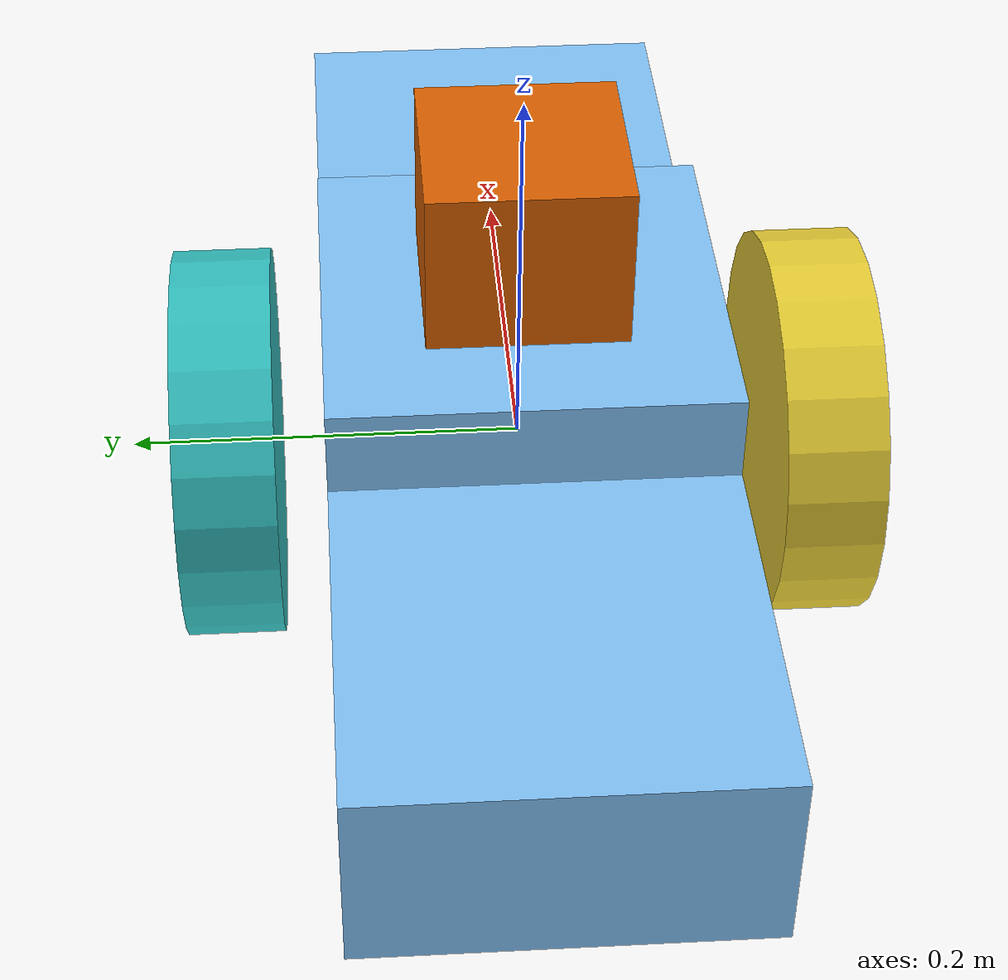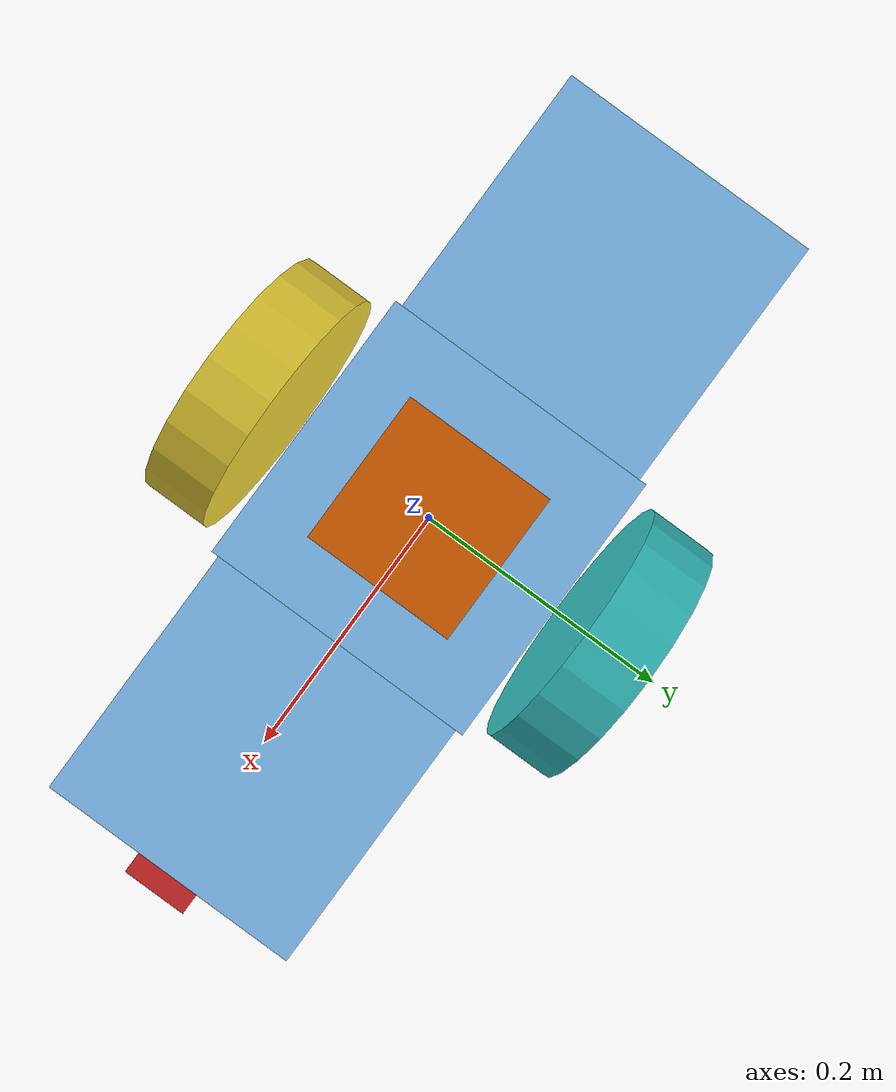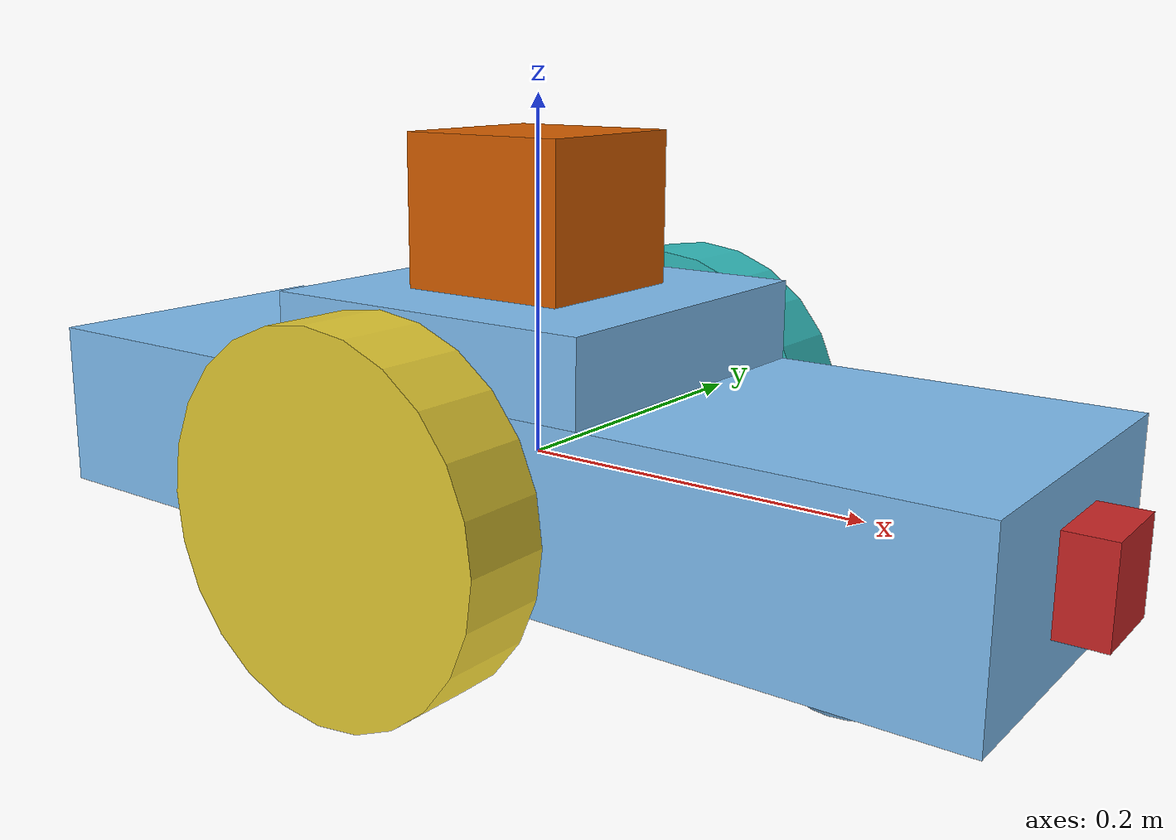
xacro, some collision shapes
<?xml version='1.0'?>

<robot name="my_robot" xmlns:xacro="http://www.ros.org/wiki/xacro">

  <xacro:include filename="$(find my_robot)/urdf/my_robot.gazebo" />

  <link name="robot_footprint"></link>

  <joint name="robot_footprint_joint" type="fixed">
    <origin xyz="0 0 0" rpy="0 0 0" />
    <parent link="robot_footprint"/>
    <child link="chassis" />
  </joint>

  <link name='chassis'>
    <pose>0 0 0.1 0 0 0</pose>

    <inertial>
      <mass value="15.0"/>
      <origin xyz="0.0 0 0" rpy=" 0 0 0"/>
      <inertia
          ixx="0.1" ixy="0" ixz="0"
          iyy="0.1" iyz="0"
          izz="0.1"
      />
    </inertial>

    <collision name='collision'>
      <origin xyz="0 0 0" rpy=" 0 0 0"/>
      <geometry>
        <box size=".6 .2 .1"/>
      </geometry>
    </collision>

    <visual name='chassis_visual'>
      <origin xyz="0 0 0" rpy=" 0 0 0"/>
      <geometry>
        <box size=".6 .2 .1"/>
      </geometry>
    </visual>

   <collision name="upper_box">
     <origin xyz="0 0 0.075" rpy="0 0 0"/>
     <geometry>
       <box size="0.2 0.2 0.05"/>
     </geometry>
   </collision>

   <visual name="upper_box_visual">
     <origin xyz="0 0 0.07" rpy="0 0 0"/>
     <geometry>
       <box size="0.2 0.2 0.05"/>
     </geometry>
   </visual>

    <collision name='back_caster_collision'>
      <origin xyz="-0.2 0 -0.05" rpy=" 0 0 0"/>
      <geometry>
        <sphere radius="0.0499"/>
      </geometry>
    </collision>

    <visual name='back_caster_visual'>
      <origin xyz="-0.2 0 -0.05" rpy=" 0 0 0"/>
      <geometry>
        <sphere radius="0.05"/>
      </geometry>
    </visual>

    <collision name='front_caster_collision'>
      <origin xyz="0.2 0 -0.05" rpy=" 0 0 0"/>
      <geometry>
        <sphere radius="0.0499"/>
      </geometry>
    </collision>

    <visual name='front_caster_visual'>
      <origin xyz="0.2 0 -0.05" rpy=" 0 0 0"/>
      <geometry>
        <sphere radius="0.05"/>
      </geometry>
    </visual>

  </link>

  <link name='left_wheel'>

    <collision name='left_wheel_collision'>
      <origin xyz="0 0 0" rpy="0 1.5707 1.5707"/>
      <geometry>
        <cylinder radius="0.1" length="0.05"/>
      </geometry>
    </collision>

    <inertial>
      <mass value="5.0"/>
      <inertia
          ixx="0.1" ixy="0" ixz="0"
          iyy="0.1" iyz="0"
          izz="0.1"
      />
    </inertial>

    <visual name='left_wheel_visual'>
      <origin xyz="0 0 0" rpy="0 1.5707 1.5707"/>
      <geometry>
        <cylinder radius="0.1" length="0.05"/>
      </geometry>
    </visual>

  </link>

  <joint type="continuous" name="left_wheel_hinge">
    <origin xyz="0 0.15 0" rpy="0 0 0"/>
    <child link="left_wheel"/>
    <parent link="chassis"/>
    <axis xyz="0 1 0" rpy="0 0 0"/>
    <limit effort="10000" velocity="1000"/>
    <dynamics damping="1.0" friction="1.0"/>
  </joint>

  <link name='right_wheel'>

    <collision name='right_wheel_collision'>
      <origin xyz="0 0 0" rpy="0 1.5707 1.5707"/>
      <geometry>
        <cylinder radius="0.1" length="0.05"/>
      </geometry>
    </collision>

    <inertial>
      <mass value="5.0"/>
      <inertia
          ixx="0.1" ixy="0" ixz="0"
          iyy="0.1" iyz="0"
          izz="0.1"
      />
    </inertial>

    <visual name='right_wheel_visual'>
      <origin xyz="0 0 0" rpy="0 1.5707 1.5707"/>
      <geometry>
        <cylinder radius="0.1" length="0.05"/>
      </geometry>
    </visual>

  </link>

  <joint type="continuous" name="right_wheel_hinge">
    <origin xyz="0 -0.15 0" rpy="0 0 0"/>
    <child link="right_wheel"/>
    <parent link="chassis"/>
    <axis xyz="0 1 0" rpy="0 0 0"/>
    <limit effort="10000" velocity="1000"/>
    <dynamics damping="1.0" friction="1.0"/>
  </joint>

  <link name="camera_link">

	<collision name="camera_collision">
	  <origin xyz="0 0 0" rpy="0 0 0"/>
	  <geometry>
	    <box size="0.05 0.05 0.05"/>
	  </geometry>
	</collision>

	<visual name="camera_visual">
	  <origin xyz="0 0 0" rpy="0 0 0"/>
	  <geometry>
	    <box size="0.05 0.05 0.05"/>
	  </geometry>
	</visual>

	<inertial>
	  <mass value="0.1"/>
          <origin xyz="0 0 0" rpy=" 0 0 0"/>
	  <box_inertia m="0.1" x="0.05" y="0.05" z="0.05"/>
	  <inertia
          ixx="1e-6" ixy="0" ixz="0"
          iyy="1e-6" iyz="0"
          izz="1e-6"
      />
	</inertial>

  </link>

  <joint type="fixed" name="camera_joint">
    <origin xyz="0.3 0 0" rpy="0 0 0"/>
	<child link="camera_link"/>
	<parent link="chassis"/>
  </joint>

  <link name="hokuyo">

    <collision name="hokuyo_collision">
      <origin xyz="0 0 0" rpy="0 0 0"/>
      <geometry>
	<box size="0.1 0.1 0.1"/>
      </geometry>
    </collision>

    <visual name="hokuyo_visual">
      <origin xyz="0 0 0" rpy="0 0 0"/>
      <geometry>
	<mesh filename="package://my_robot/meshes/hokuyo.dae"/>
      </geometry>
    </visual>

    <inertial>
      <mass value="1e-5"/>
      <origin xyz="0 0 0" rpy=" 0 0 0"/>
	<inertia
            ixx="1e-6" ixy="0" ixz="0"
            iyy="1e-6" iyz="0"
            izz="1e-6"
        />
     </inertial>

   </link>

  <joint name="camera_optical_joint" type="fixed">
    <origin xyz="0 0 0" rpy="-1.5707 0 -1.5707"/>
    <parent link="camera_link"/>
    <child link="camera_link_optical"/>
  </joint>

  <link name="camera_link_optical">
  </link>

  <joint type="fixed" name="hokuyo_joint">
    <origin xyz="0 0 0.13" rpy="0 0 0"/>
    <axis xyz="0 1 0" rpy="0 0 0"/>
    <child link="hokuyo"/>
    <parent link="chassis"/>
  </joint>

  <gazebo reference="left_wheel">
    <material>Gazebo/Turquoise</material>
  </gazebo>

  <gazebo reference="right_wheel">
    <material>Gazebo/ZincYellow</material>
  </gazebo>

  <gazebo reference="chassis">
    <material>Gazebo/SkyBlue</material>
  </gazebo>

  <gazebo reference="camera_link">
    <material>Gazebo/RedGlow</material>
  </gazebo>

</robot>
